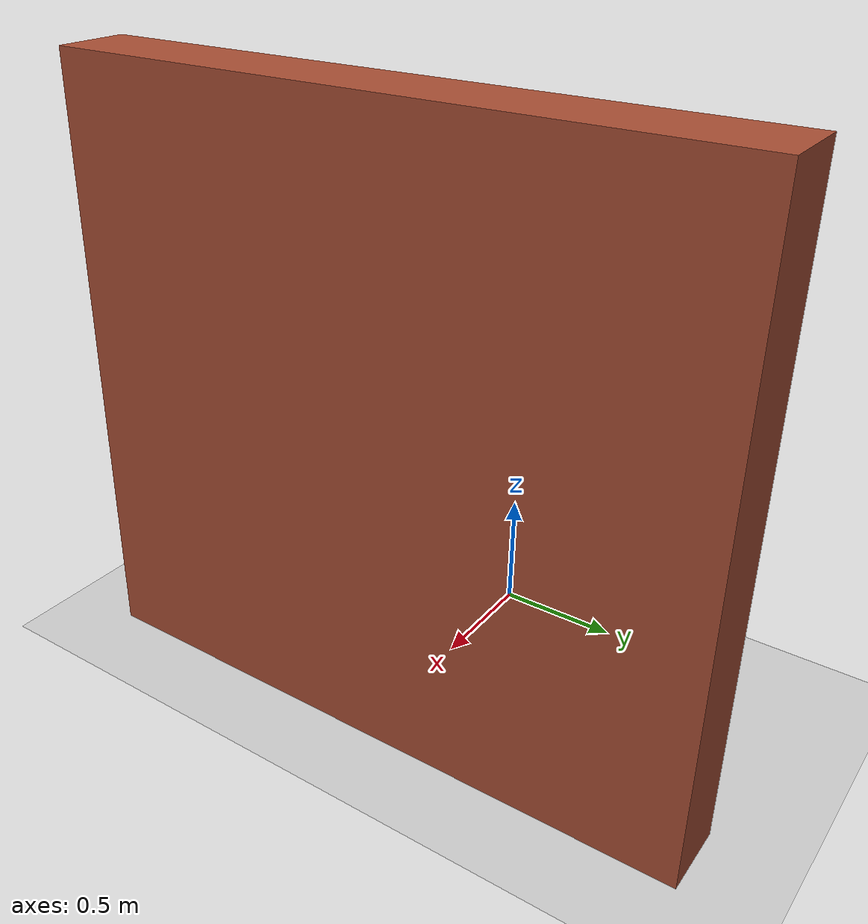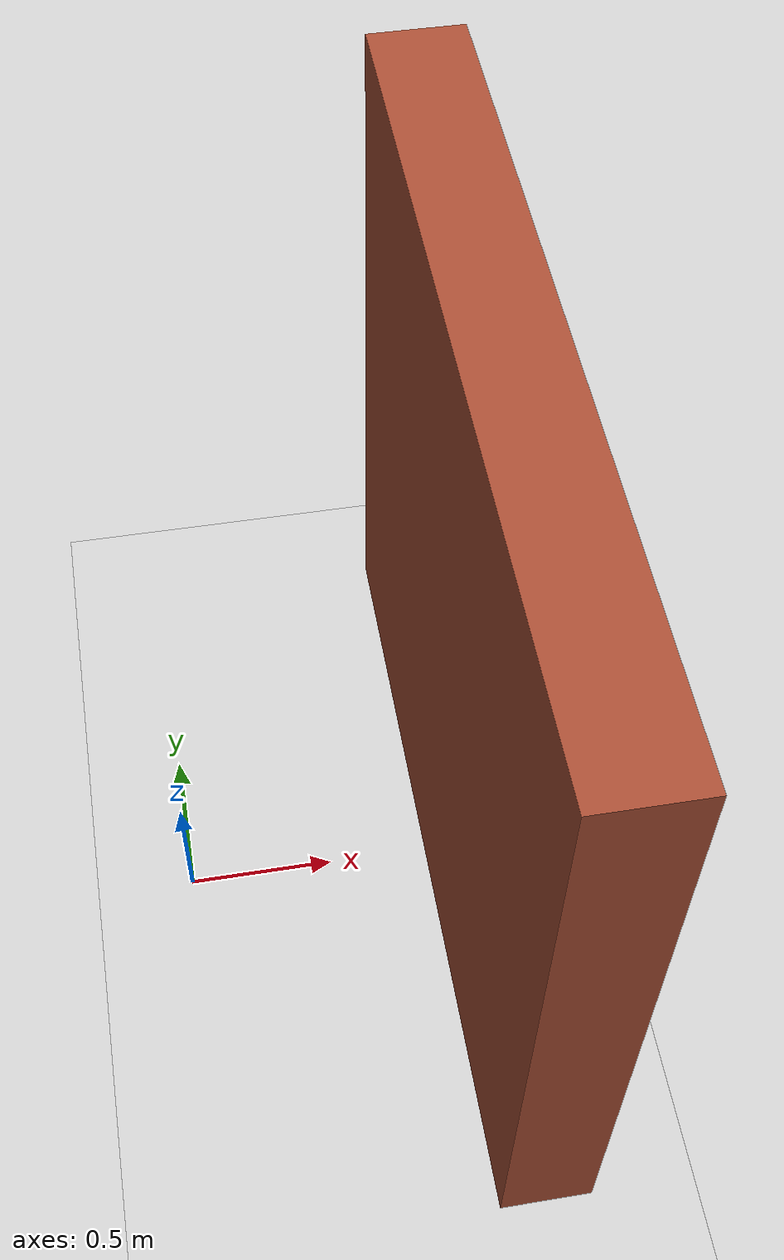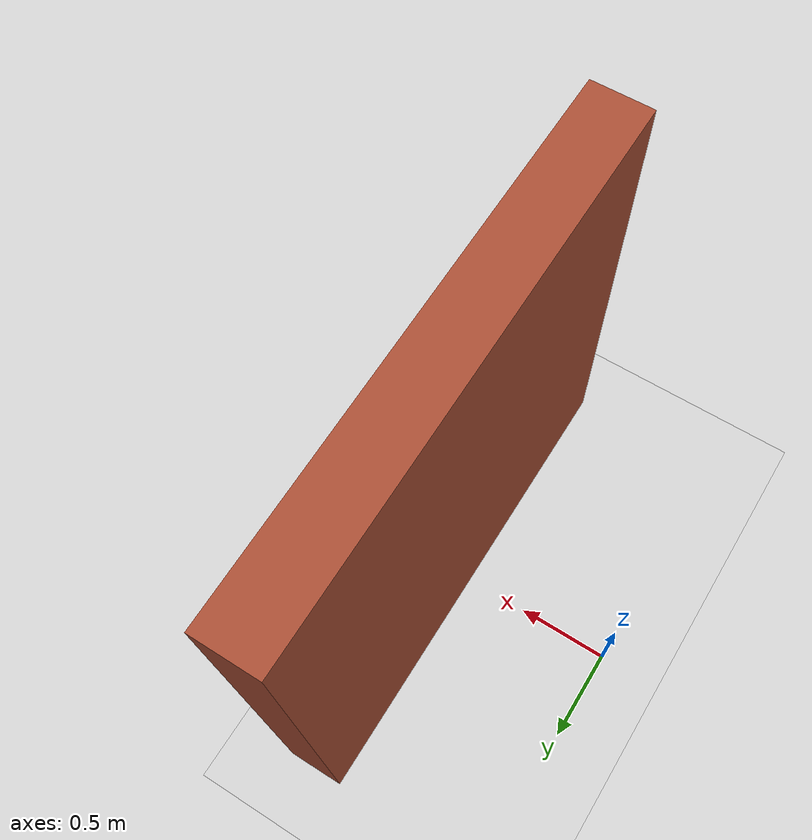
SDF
<?xml version="1.0" ?>
<sdf version="1.4">
  <world name="default">
    <include>
      <uri>model://ground_plane</uri>
    </include>
    <include>
      <uri>model://sun</uri>
    </include>
    <physics type='bullet'>
      <bullet>
        <solver>
          <type>sequential_impulse</type>
          <iters>500</iters>
          <sor>1.3</sor>
        </solver>
        <constraints>
          <cfm>0.0</cfm>
          <erp>0.2</erp>
          <split_impulse>true</split_impulse>
          <split_impulse_penetration_threshold>-0.002</split_impulse_penetration_threshold>
          <contact_surface_layer>0.0001</contact_surface_layer>
        </constraints>
      </bullet>
      <max_step_size>0.001</max_step_size>
      <real_time_factor>1</real_time_factor>
      <real_time_update_rate>1000</real_time_update_rate>
      <gravity>0 0 -9.8</gravity>
    </physics>
		<model name='single_wall'>
		  <pose>1 0 0 0 0 0</pose>
		  <link name='Wall_1'>
		    <collision name='Wall_1_Collision'>
		      <geometry>
		        <box>
		          <size>2.65 0.3 2.5</size>
		        </box>
		      </geometry>
		      <pose>0 0 1.25 0 -0 0</pose>
		    </collision>
		    <visual name='Wall_1_Visual'>
		      <pose>0 0 1.25 0 -0 0</pose>
		      <geometry>
		        <box>
		          <size>2.65 0.3 2.5</size>
		        </box>
		      </geometry>
		      <material>
		        <script>
		          <uri>file://media/materials/scripts/gazebo.material</uri>
		          <name>Gazebo/Bricks</name>
		        </script>
		        <ambient>0.760784 0.662745 0.627451 1</ambient>
		      </material>
		    </visual>
		    <pose>0 -0 0 0 0 -1.5708</pose>
		  </link>
		  <static>1</static>
		</model>
  </world>
</sdf>
